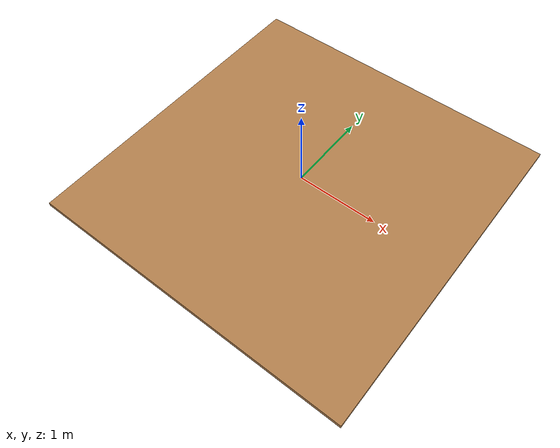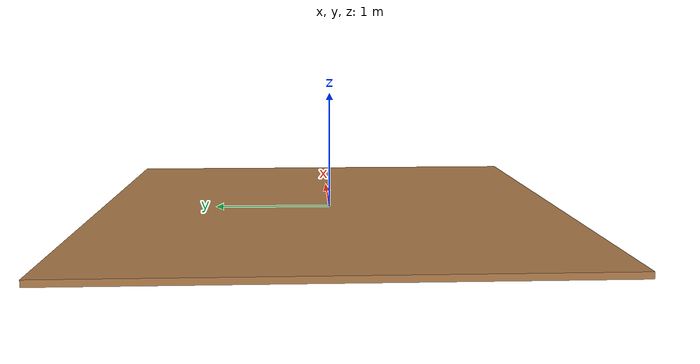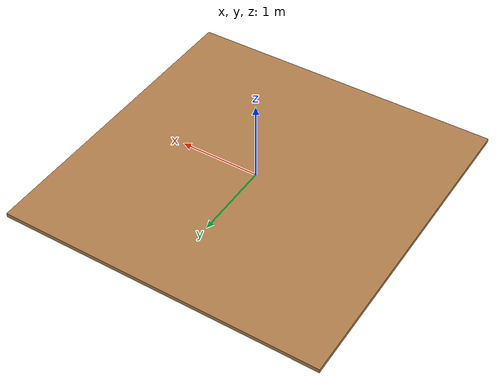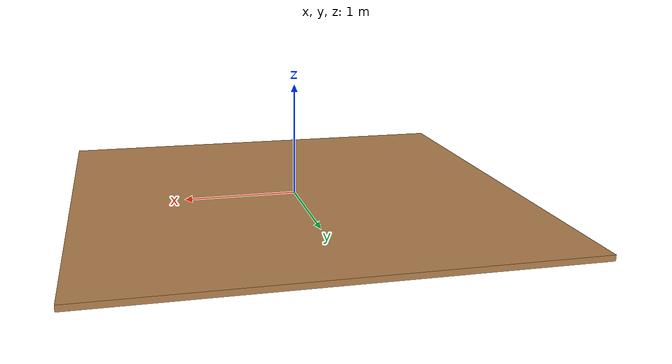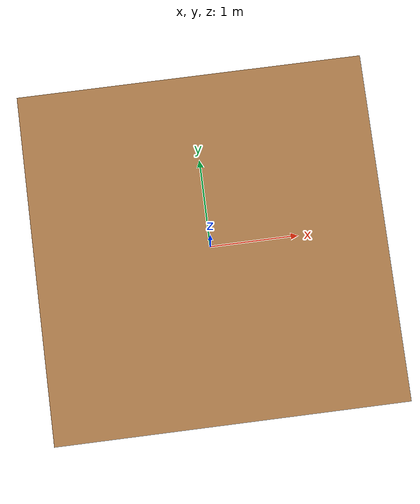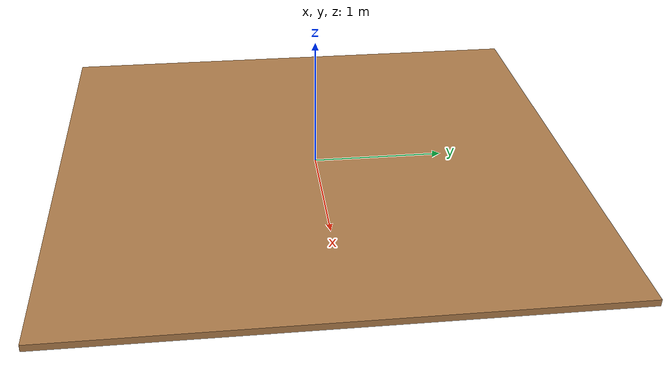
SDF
<?xml version="1.0" ?>

<sdf version="1.5">
<model name='floor'>
      <static>1</static>
      <pose frame=''>0.0 0.0 -0.025 0 0 0</pose>
      <link name='link'>
        <inertial>
          <mass>1</mass>
          <inertia>
            <ixx>0.166667</ixx>
            <ixy>0</ixy>
            <ixz>0</ixz>
            <iyy>0.166667</iyy>
            <iyz>0</iyz>
            <izz>0.166667</izz>
          </inertia>
        </inertial>
        <collision name='collision'>
          <geometry>
            <box>
              <size>4.0 4.0 0.05</size>
            </box>
          </geometry>
          <max_contacts>10</max_contacts>
          <surface>
            <contact>
              <ode/>
            </contact>
            <bounce/>
            <friction>
              <torsional>
                <ode/>
              </torsional>
              <ode/>
            </friction>
          </surface>
        </collision>
        <visual name='visual'>
          <geometry>
            <box>
              <size>4.0 4.0 0.05</size>
            </box>
          </geometry>
          <material>
            <script>
              <uri>file://media/materials/scripts/gazebo.material</uri>
              <name>Gazebo/Wood</name>
            </script>
            <ambient>1 1 1 1</ambient>
          </material>
        </visual>
        <self_collide>0</self_collide>
        <kinematic>0</kinematic>
      </link>
    </model>
    </sdf>
